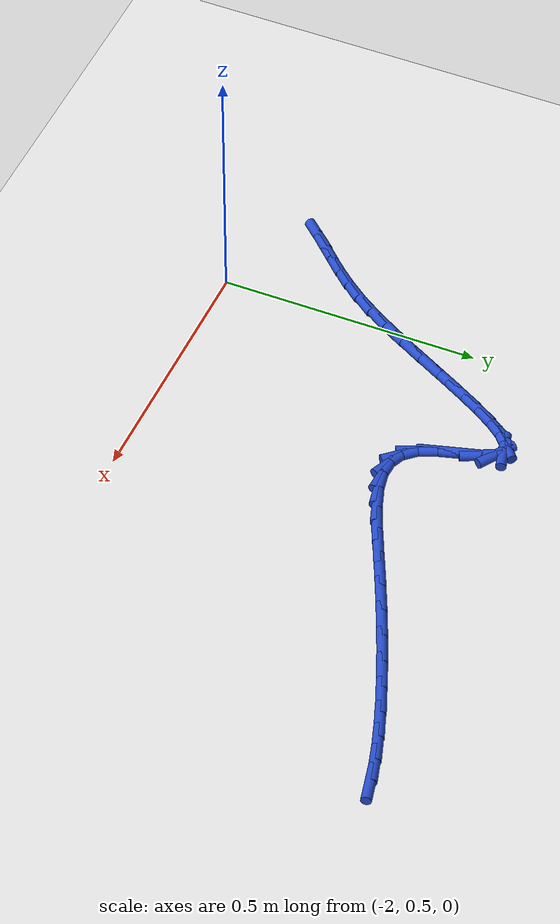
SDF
<sdf version="1.6">
 <world name="default">
  <model name="ground_plane">
   <static>1</static>
   <link name="link">
    <collision name="collision">
     <geometry><plane><normal>0 0 1</normal><size>100 100</size></plane></geometry>
     <surface><friction><ode><mu>100</mu><mu2>50</mu2></ode></friction></surface>
    </collision>
    <visual name="visual">
     <cast_shadows>0</cast_shadows>
     <geometry><plane><normal>0 0 1</normal><size>100 100</size></plane></geometry>
     <material>
      <script><uri>file://media/materials/scripts/gazebo.material</uri><name>Gazebo/WhiteGlow</name></script>
     </material>
    </visual>
   </link>
  </model>
  <model name="line">
   <link name="link_55">
    <pose>-0.9912039830397729 1.2198323439304009 0.01 0 1.57 0.22495554003833673</pose>
    <collision name="collision">
     <geometry><cylinder><radius>0.01</radius><length>0.08</length></cylinder></geometry>
    </collision>
    <visual name="visual">
     <material>
      <script><name>Gazebo/Blue</name><uri>file://media/materials/scripts/gazebo.material</uri></script>
     </material>
     <geometry><cylinder><radius>0.01</radius><length>0.08</length></cylinder></geometry>
    </visual>
   </link>
   <link name="link_56">
    <pose>-1.0307213030397948 1.2107896516408503 0.01 0 1.57 0.28113652876491724</pose>
    <collision name="collision">
     <geometry><cylinder><radius>0.01</radius><length>0.08</length></cylinder></geometry>
    </collision>
    <visual name="visual">
     <material>
      <script><name>Gazebo/Blue</name><uri>file://media/materials/scripts/gazebo.material</uri></script>
     </material>
     <geometry><cylinder><radius>0.01</radius><length>0.08</length></cylinder></geometry>
    </visual>
   </link>
   <link name="link_57">
    <pose>-1.074810700551842 1.1980572846622763 0.01 0 1.57 0.3213209097286658</pose>
    <collision name="collision">
     <geometry><cylinder><radius>0.01</radius><length>0.08</length></cylinder></geometry>
    </collision>
    <visual name="visual">
     <material>
      <script><name>Gazebo/Blue</name><uri>file://media/materials/scripts/gazebo.material</uri></script>
     </material>
     <geometry><cylinder><radius>0.01</radius><length>0.08</length></cylinder></geometry>
    </visual>
   </link>
   <link name="link_58">
    <pose>-1.1226174868991625 1.1821445080919561 0.01 0 1.57 0.3515336775595312</pose>
    <collision name="collision">
     <geometry><cylinder><radius>0.01</radius><length>0.08</length></cylinder></geometry>
    </collision>
    <visual name="visual">
     <material>
      <script><name>Gazebo/Blue</name><uri>file://media/materials/scripts/gazebo.material</uri></script>
     </material>
     <geometry><cylinder><radius>0.01</radius><length>0.08</length></cylinder></geometry>
    </visual>
   </link>
   <link name="link_59">
    <pose>-1.1732869734050047 1.1635605870271646 0.01 0 1.57 0.3751731866837851</pose>
    <collision name="collision">
     <geometry><cylinder><radius>0.01</radius><length>0.08</length></cylinder></geometry>
    </collision>
    <visual name="visual">
     <material>
      <script><name>Gazebo/Blue</name><uri>file://media/materials/scripts/gazebo.material</uri></script>
     </material>
     <geometry><cylinder><radius>0.01</radius><length>0.08</length></cylinder></geometry>
    </visual>
   </link>
   <link name="link_60">
    <pose>-1.2259644713926154 1.1428147865651785 0.01 0 1.57 0.3942988432691593</pose>
    <collision name="collision">
     <geometry><cylinder><radius>0.01</radius><length>0.08</length></cylinder></geometry>
    </collision>
    <visual name="visual">
     <material>
      <script><name>Gazebo/Blue</name><uri>file://media/materials/scripts/gazebo.material</uri></script>
     </material>
     <geometry><cylinder><radius>0.01</radius><length>0.08</length></cylinder></geometry>
    </visual>
   </link>
   <link name="link_61">
    <pose>-1.2797952921852445 1.1204163718032736 0.01 0 1.57 0.41023948761265855</pose>
    <collision name="collision">
     <geometry><cylinder><radius>0.01</radius><length>0.08</length></cylinder></geometry>
    </collision>
    <visual name="visual">
     <material>
      <script><name>Gazebo/Blue</name><uri>file://media/materials/scripts/gazebo.material</uri></script>
     </material>
     <geometry><cylinder><radius>0.01</radius><length>0.08</length></cylinder></geometry>
    </visual>
   </link>
   <link name="link_62">
    <pose>-1.3339247471061382 1.0968746078387264 0.01 0 1.57 0.4239061404555395</pose>
    <collision name="collision">
     <geometry><cylinder><radius>0.01</radius><length>0.08</length></cylinder></geometry>
    </collision>
    <visual name="visual">
     <material>
      <script><name>Gazebo/Blue</name><uri>file://media/materials/scripts/gazebo.material</uri></script>
     </material>
     <geometry><cylinder><radius>0.01</radius><length>0.08</length></cylinder></geometry>
    </visual>
   </link>
   <link name="link_63">
    <pose>-1.3874981474785462 1.0726987597688122 0.01 0 1.57 0.43596724969782996</pose>
    <collision name="collision">
     <geometry><cylinder><radius>0.01</radius><length>0.08</length></cylinder></geometry>
    </collision>
    <visual name="visual">
     <material>
      <script><name>Gazebo/Blue</name><uri>file://media/materials/scripts/gazebo.material</uri></script>
     </material>
     <geometry><cylinder><radius>0.01</radius><length>0.08</length></cylinder></geometry>
    </visual>
   </link>
   <link name="link_64">
    <pose>-1.4396608046257147 1.048398092690808 0.01 0 1.57 0.44550470599834224</pose>
    <collision name="collision">
     <geometry><cylinder><radius>0.01</radius><length>0.08</length></cylinder></geometry>
    </collision>
    <visual name="visual">
     <material>
      <script><name>Gazebo/Blue</name><uri>file://media/materials/scripts/gazebo.material</uri></script>
     </material>
     <geometry><cylinder><radius>0.01</radius><length>0.08</length></cylinder></geometry>
    </visual>
   </link>
   <link name="link_65">
    <pose>-1.4895843338457193 1.0245584689454401 0.01 0 1.57 0.4387814823470439</pose>
    <collision name="collision">
     <geometry><cylinder><radius>0.01</radius><length>0.08</length></cylinder></geometry>
    </collision>
    <visual name="visual">
     <material>
      <script><name>Gazebo/Blue</name><uri>file://media/materials/scripts/gazebo.material</uri></script>
     </material>
     <geometry><cylinder><radius>0.01</radius><length>0.08</length></cylinder></geometry>
    </visual>
   </link>
   <link name="link_66">
    <pose>-1.5366779892381162 1.0024577556845238 0.01 0 1.57 0.4038404943172151</pose>
    <collision name="collision">
     <geometry><cylinder><radius>0.01</radius><length>0.08</length></cylinder></geometry>
    </collision>
    <visual name="visual">
     <material>
      <script><name>Gazebo/Blue</name><uri>file://media/materials/scripts/gazebo.material</uri></script>
     </material>
     <geometry><cylinder><radius>0.01</radius><length>0.08</length></cylinder></geometry>
    </visual>
   </link>
   <link name="link_67">
    <pose>-1.5804771705634035 0.9837411565542822 0.01 0 1.57 0.3293017964491968</pose>
    <collision name="collision">
     <geometry><cylinder><radius>0.01</radius><length>0.08</length></cylinder></geometry>
    </collision>
    <visual name="visual">
     <material>
      <script><name>Gazebo/Blue</name><uri>file://media/materials/scripts/gazebo.material</uri></script>
     </material>
     <geometry><cylinder><radius>0.01</radius><length>0.08</length></cylinder></geometry>
    </visual>
   </link>
   <link name="link_68">
    <pose>-1.6205184385784936 0.970057256025517 0.01 0 1.57 0.19306018312066153</pose>
    <collision name="collision">
     <geometry><cylinder><radius>0.01</radius><length>0.08</length></cylinder></geometry>
    </collision>
    <visual name="visual">
     <material>
      <script><name>Gazebo/Blue</name><uri>file://media/materials/scripts/gazebo.material</uri></script>
     </material>
     <geometry><cylinder><radius>0.01</radius><length>0.08</length></cylinder></geometry>
    </visual>
   </link>
   <link name="link_69">
    <pose>-1.6563383540402936 0.963054638569029 0.01 0 1.57 -0.0426029141138185</pose>
    <collision name="collision">
     <geometry><cylinder><radius>0.01</radius><length>0.08</length></cylinder></geometry>
    </collision>
    <visual name="visual">
     <material>
      <script><name>Gazebo/Blue</name><uri>file://media/materials/scripts/gazebo.material</uri></script>
     </material>
     <geometry><cylinder><radius>0.01</radius><length>0.08</length></cylinder></geometry>
    </visual>
   </link>
   <link name="link_70">
    <pose>-1.687473477705714 0.9643818886556195 0.01 0 1.57 -0.4103555794179641</pose>
    <collision name="collision">
     <geometry><cylinder><radius>0.01</radius><length>0.08</length></cylinder></geometry>
    </collision>
    <visual name="visual">
     <material>
      <script><name>Gazebo/Blue</name><uri>file://media/materials/scripts/gazebo.material</uri></script>
     </material>
     <geometry><cylinder><radius>0.01</radius><length>0.08</length></cylinder></geometry>
    </visual>
   </link>
   <link name="link_71">
    <pose>-1.7134603703316638 0.9756875907560896 0.01 0 1.57 -0.8443788427989958</pose>
    <collision name="collision">
     <geometry><cylinder><radius>0.01</radius><length>0.08</length></cylinder></geometry>
    </collision>
    <visual name="visual">
     <material>
      <script><name>Gazebo/Blue</name><uri>file://media/materials/scripts/gazebo.material</uri></script>
     </material>
     <geometry><cylinder><radius>0.01</radius><length>0.08</length></cylinder></geometry>
    </visual>
   </link>
   <link name="link_72">
    <pose>-1.733835643924174 0.9986201561725705 0.01 0 1.57 -1.1625798326579104</pose>
    <collision name="collision">
     <geometry><cylinder><radius>0.01</radius><length>0.08</length></cylinder></geometry>
    </collision>
    <visual name="visual">
     <material>
      <script><name>Gazebo/Blue</name><uri>file://media/materials/scripts/gazebo.material</uri></script>
     </material>
     <geometry><cylinder><radius>0.01</radius><length>0.08</length></cylinder></geometry>
    </visual>
   </link>
   <link name="link_73">
    <pose>-1.7486884623609975 1.0329609461930271 0.01 0 1.57 -1.2882344477666838</pose>
    <collision name="collision">
     <geometry><cylinder><radius>0.01</radius><length>0.08</length></cylinder></geometry>
    </collision>
    <visual name="visual">
     <material>
      <script><name>Gazebo/Blue</name><uri>file://media/materials/scripts/gazebo.material</uri></script>
     </material>
     <geometry><cylinder><radius>0.01</radius><length>0.08</length></cylinder></geometry>
    </visual>
   </link>
   <link name="link_74">
    <pose>-1.7600258518570564 1.072010944267567 0.01 0 1.57 -1.2910028545846541</pose>
    <collision name="collision">
     <geometry><cylinder><radius>0.01</radius><length>0.08</length></cylinder></geometry>
    </collision>
    <visual name="visual">
     <material>
      <script><name>Gazebo/Blue</name><uri>file://media/materials/scripts/gazebo.material</uri></script>
     </material>
     <geometry><cylinder><radius>0.01</radius><length>0.08</length></cylinder></geometry>
    </visual>
   </link>
   <link name="link_75">
    <pose>-1.7702706656876686 1.1076660713377116 0.01 0 1.57 -1.1271887554502344</pose>
    <collision name="collision">
     <geometry><cylinder><radius>0.01</radius><length>0.08</length></cylinder></geometry>
    </collision>
    <visual name="visual">
     <material>
      <script><name>Gazebo/Blue</name><uri>file://media/materials/scripts/gazebo.material</uri></script>
     </material>
     <geometry><cylinder><radius>0.01</radius><length>0.08</length></cylinder></geometry>
    </visual>
   </link>
   <link name="link_76">
    <pose>-1.781810935588179 1.1319513975729016 0.01 0 1.57 -0.5811126012473002</pose>
    <collision name="collision">
     <geometry><cylinder><radius>0.01</radius><length>0.08</length></cylinder></geometry>
    </collision>
    <visual name="visual">
     <material>
      <script><name>Gazebo/Blue</name><uri>file://media/materials/scripts/gazebo.material</uri></script>
     </material>
     <geometry><cylinder><radius>0.01</radius><length>0.08</length></cylinder></geometry>
    </visual>
   </link>
   <link name="link_77">
    <pose>-1.795876158436418 1.1411888703764053 0.01 0 1.57 0.25572171633235186</pose>
    <collision name="collision">
     <geometry><cylinder><radius>0.01</radius><length>0.08</length></cylinder></geometry>
    </collision>
    <visual name="visual">
     <material>
      <script><name>Gazebo/Blue</name><uri>file://media/materials/scripts/gazebo.material</uri></script>
     </material>
     <geometry><cylinder><radius>0.01</radius><length>0.08</length></cylinder></geometry>
    </visual>
   </link>
   <link name="link_78">
    <pose>-1.8122949214013495 1.1368962558147302 0.01 0 1.57 0.7124184980600551</pose>
    <collision name="collision">
     <geometry><cylinder><radius>0.01</radius><length>0.08</length></cylinder></geometry>
    </collision>
    <visual name="visual">
     <material>
      <script><name>Gazebo/Blue</name><uri>file://media/materials/scripts/gazebo.material</uri></script>
     </material>
     <geometry><cylinder><radius>0.01</radius><length>0.08</length></cylinder></geometry>
    </visual>
   </link>
   <link name="link_79">
    <pose>-1.8308119661118176 1.120902293759068 0.01 0 1.57 0.9039591608851704</pose>
    <collision name="collision">
     <geometry><cylinder><radius>0.01</radius><length>0.08</length></cylinder></geometry>
    </collision>
    <visual name="visual">
     <material>
      <script><name>Gazebo/Blue</name><uri>file://media/materials/scripts/gazebo.material</uri></script>
     </material>
     <geometry><cylinder><radius>0.01</radius><length>0.08</length></cylinder></geometry>
    </visual>
   </link>
   <link name="link_80">
    <pose>-1.851172034196666 1.0950357240806112 0.01 0 1.57 0.9963712492389033</pose>
    <collision name="collision">
     <geometry><cylinder><radius>0.01</radius><length>0.08</length></cylinder></geometry>
    </collision>
    <visual name="visual">
     <material>
      <script><name>Gazebo/Blue</name><uri>file://media/materials/scripts/gazebo.material</uri></script>
     </material>
     <geometry><cylinder><radius>0.01</radius><length>0.08</length></cylinder></geometry>
    </visual>
   </link>
   <link name="link_81">
    <pose>-1.8731198672847384 1.0611252866505498 0.01 0 1.57 1.0450724605708508</pose>
    <collision name="collision">
     <geometry><cylinder><radius>0.01</radius><length>0.08</length></cylinder></geometry>
    </collision>
    <visual name="visual">
     <material>
      <script><name>Gazebo/Blue</name><uri>file://media/materials/scripts/gazebo.material</uri></script>
     </material>
     <geometry><cylinder><radius>0.01</radius><length>0.08</length></cylinder></geometry>
    </visual>
   </link>
   <link name="link_82">
    <pose>-1.896400207004879 1.020999721340078 0.01 0 1.57 1.0700941812378968</pose>
    <collision name="collision">
     <geometry><cylinder><radius>0.01</radius><length>0.08</length></cylinder></geometry>
    </collision>
    <visual name="visual">
     <material>
      <script><name>Gazebo/Blue</name><uri>file://media/materials/scripts/gazebo.material</uri></script>
     </material>
     <geometry><cylinder><radius>0.01</radius><length>0.08</length></cylinder></geometry>
    </visual>
   </link>
   <link name="link_83">
    <pose>-1.920757794985931 0.9764877680203854 0.01 0 1.57 1.0795862401521656</pose>
    <collision name="collision">
     <geometry><cylinder><radius>0.01</radius><length>0.08</length></cylinder></geometry>
    </collision>
    <visual name="visual">
     <material>
      <script><name>Gazebo/Blue</name><uri>file://media/materials/scripts/gazebo.material</uri></script>
     </material>
     <geometry><cylinder><radius>0.01</radius><length>0.08</length></cylinder></geometry>
    </visual>
   </link>
   <link name="link_84">
    <pose>-1.945937372856739 0.9294181665626655 0.01 0 1.57 1.0767146718007417</pose>
    <collision name="collision">
     <geometry><cylinder><radius>0.01</radius><length>0.08</length></cylinder></geometry>
    </collision>
    <visual name="visual">
     <material>
      <script><name>Gazebo/Blue</name><uri>file://media/materials/scripts/gazebo.material</uri></script>
     </material>
     <geometry><cylinder><radius>0.01</radius><length>0.08</length></cylinder></geometry>
    </visual>
   </link>
   <link name="link_85">
    <pose>-1.9716836822461457 0.8816196568381086 0.01 0 1.57 1.061833140421027</pose>
    <collision name="collision">
     <geometry><cylinder><radius>0.01</radius><length>0.08</length></cylinder></geometry>
    </collision>
    <visual name="visual">
     <material>
      <script><name>Gazebo/Blue</name><uri>file://media/materials/scripts/gazebo.material</uri></script>
     </material>
     <geometry><cylinder><radius>0.01</radius><length>0.08</length></cylinder></geometry>
    </visual>
   </link>
   <link name="link_86">
    <pose>-1.9977414647829959 0.8349209787179079 0.01 0 1.57 1.0328679115086612</pose>
    <collision name="collision">
     <geometry><cylinder><radius>0.01</radius><length>0.08</length></cylinder></geometry>
    </collision>
    <visual name="visual">
     <material>
      <script><name>Gazebo/Blue</name><uri>file://media/materials/scripts/gazebo.material</uri></script>
     </material>
     <geometry><cylinder><radius>0.01</radius><length>0.08</length></cylinder></geometry>
    </visual>
   </link>
   <link name="link_87">
    <pose>-2.023855462096133 0.7911508720732543 0.01 0 1.57 0.9846491361074924</pose>
    <collision name="collision">
     <geometry><cylinder><radius>0.01</radius><length>0.08</length></cylinder></geometry>
    </collision>
    <visual name="visual">
     <material>
      <script><name>Gazebo/Blue</name><uri>file://media/materials/scripts/gazebo.material</uri></script>
     </material>
     <geometry><cylinder><radius>0.01</radius><length>0.08</length></cylinder></geometry>
    </visual>
   </link>
   <link name="link_88">
    <pose>-2.0497716345072865 0.752119900226451 0.01 0 1.57 0.9212356021429143</pose>
    <collision name="collision">
     <geometry><cylinder><radius>0.01</radius><length>0.08</length></cylinder></geometry>
    </collision>
    <visual name="visual">
     <material>
      <script><name>Gazebo/Blue</name><uri>file://media/materials/scripts/gazebo.material</uri></script>
     </material>
     <geometry><cylinder><radius>0.01</radius><length>0.08</length></cylinder></geometry>
    </visual>
   </link>
   <link name="link_89">
    <pose>-2.0753128604836824 0.7184914084849797 0.01 0 1.57 0.8634917243060417</pose>
    <collision name="collision">
     <geometry><cylinder><radius>0.01</radius><length>0.08</length></cylinder></geometry>
    </collision>
    <visual name="visual">
     <material>
      <script><name>Gazebo/Blue</name><uri>file://media/materials/scripts/gazebo.material</uri></script>
     </material>
     <geometry><cylinder><radius>0.01</radius><length>0.08</length></cylinder></geometry>
    </visual>
   </link>
   <link name="link_90">
    <pose>-2.1004234774537855 0.6891172072124498 0.01 0 1.57 0.8204940520054128</pose>
    <collision name="collision">
     <geometry><cylinder><radius>0.01</radius><length>0.08</length></cylinder></geometry>
    </collision>
    <visual name="visual">
     <material>
      <script><name>Gazebo/Blue</name><uri>file://media/materials/scripts/gazebo.material</uri></script>
     </material>
     <geometry><cylinder><radius>0.01</radius><length>0.08</length></cylinder></geometry>
    </visual>
   </link>
   <link name="link_91">
    <pose>-2.1250585366878942 0.6626893120675602 0.01 0 1.57 0.7992002242856094</pose>
    <collision name="collision">
     <geometry><cylinder><radius>0.01</radius><length>0.08</length></cylinder></geometry>
    </collision>
    <visual name="visual">
     <material>
      <script><name>Gazebo/Blue</name><uri>file://media/materials/scripts/gazebo.material</uri></script>
     </material>
     <geometry><cylinder><radius>0.01</radius><length>0.08</length></cylinder></geometry>
    </visual>
   </link>
   <link name="link_92">
    <pose>-2.1491730894563084 0.6378997387090085 0.01 0 1.57 0.8043538167698052</pose>
    <collision name="collision">
     <geometry><cylinder><radius>0.01</radius><length>0.08</length></cylinder></geometry>
    </collision>
    <visual name="visual">
     <material>
      <script><name>Gazebo/Blue</name><uri>file://media/materials/scripts/gazebo.material</uri></script>
     </material>
     <geometry><cylinder><radius>0.01</radius><length>0.08</length></cylinder></geometry>
    </visual>
   </link>
   <link name="link_93">
    <pose>-2.1727221870293265 0.6134405027954933 0.01 0 1.57 0.8369938678291033</pose>
    <collision name="collision">
     <geometry><cylinder><radius>0.01</radius><length>0.08</length></cylinder></geometry>
    </collision>
    <visual name="visual">
     <material>
      <script><name>Gazebo/Blue</name><uri>file://media/materials/scripts/gazebo.material</uri></script>
     </material>
     <geometry><cylinder><radius>0.01</radius><length>0.08</length></cylinder></geometry>
    </visual>
   </link>
  </model>
 </world>
</sdf>
